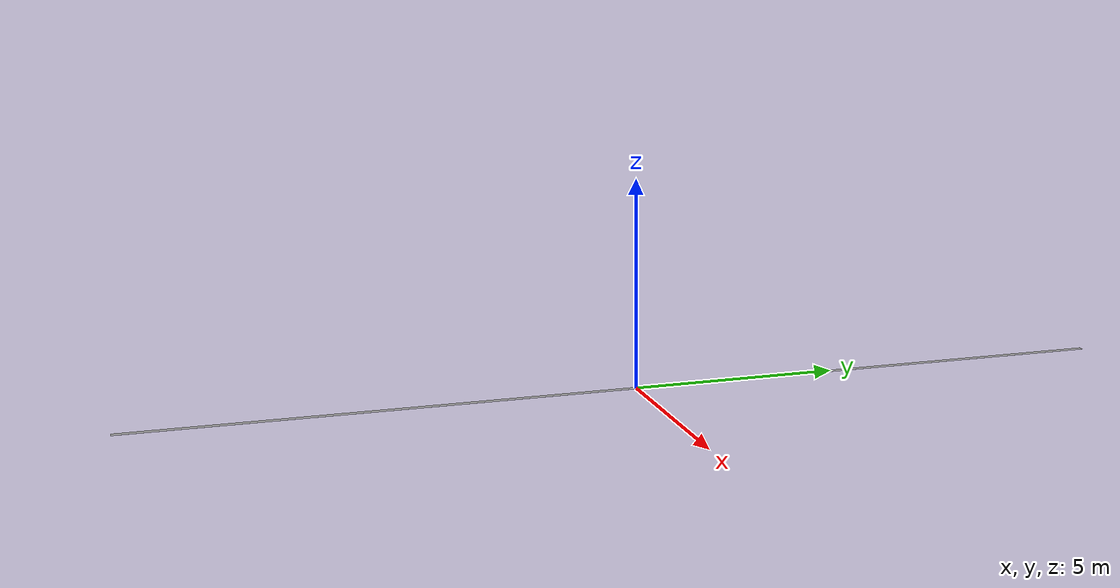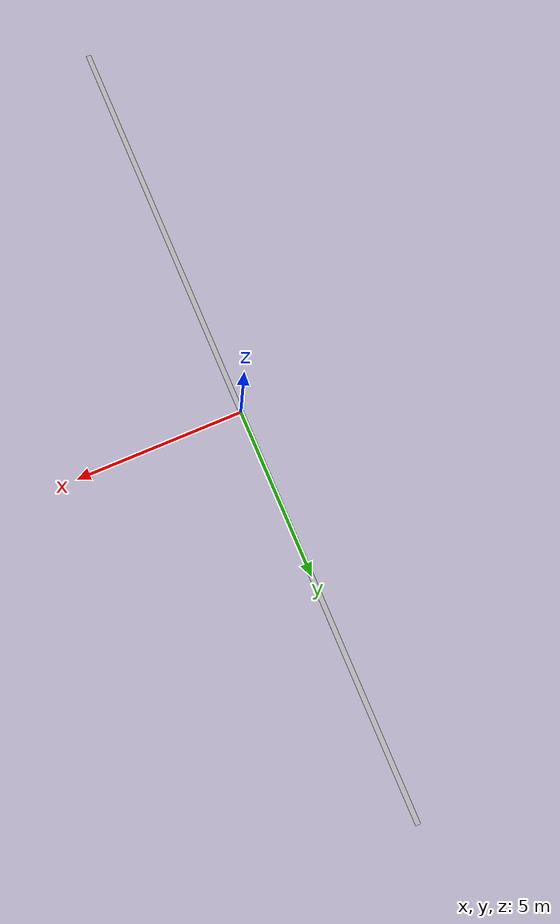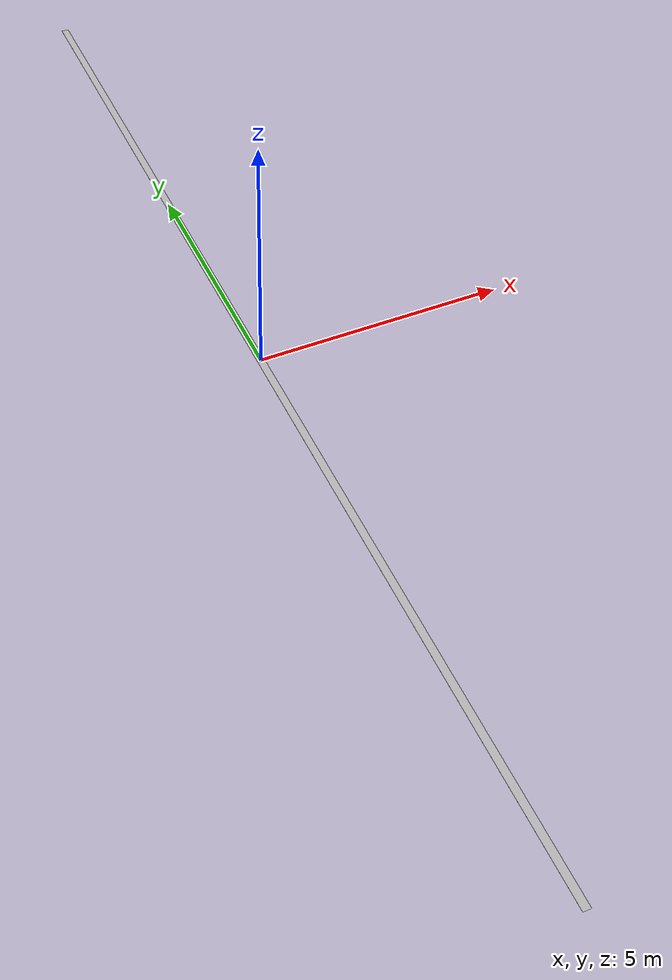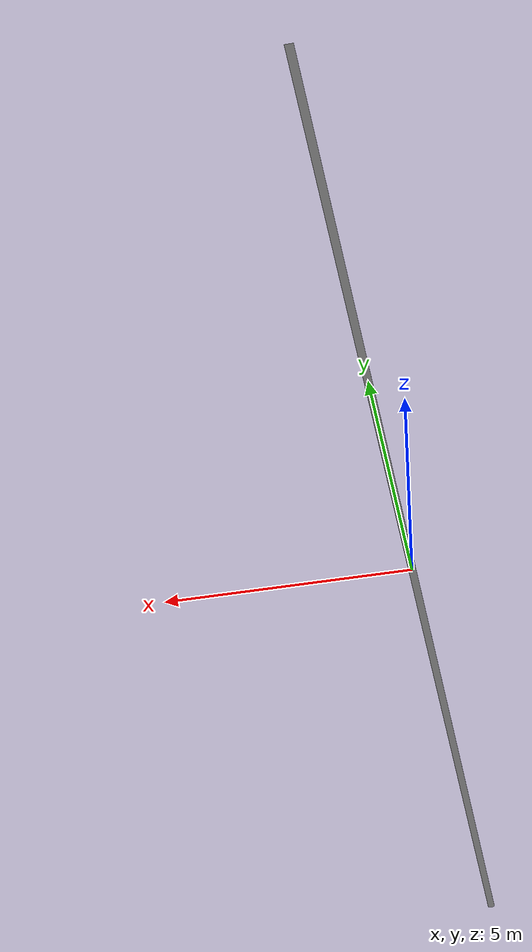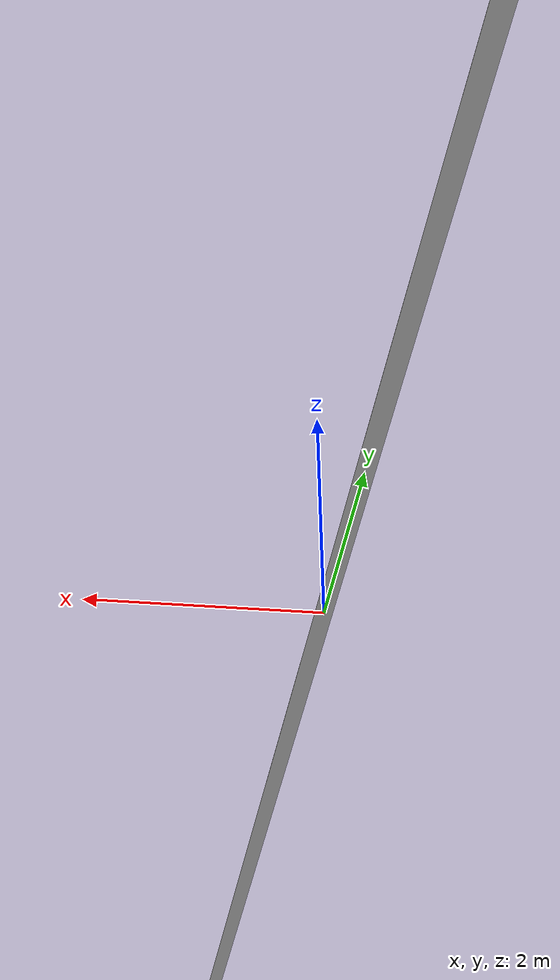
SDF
<?xml version="1.0" ?>
<sdf version="1.4">
  <model name="at1 Barrier Final Round">
    <static>true</static>
    <link name="link">
    	<visual name="visual">
        	<geometry>
           		<box>
	    			<size> 0.15 24 0.001</size>
          		</box>
        	</geometry>
		<material>
			<script>
				<uri>model://at1_barrier_final_round/materials/scripts</uri>
				<uri>model://at1_barrier_final_round/materials/textures</uri>
				<name>at1_barrier_final_round/Diffuse</name>
			</script>
		</material>
      	</visual>
     </link>
  </model>
</sdf>
